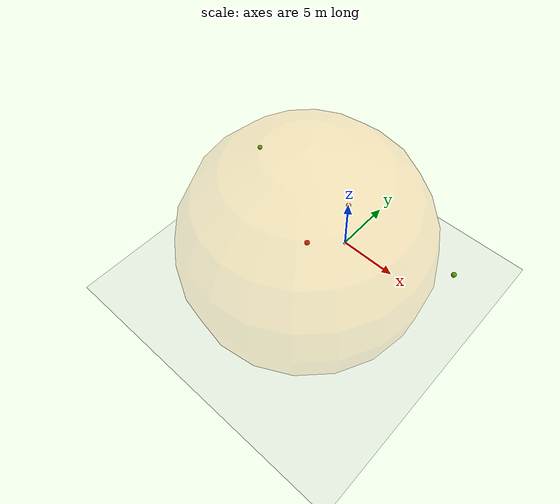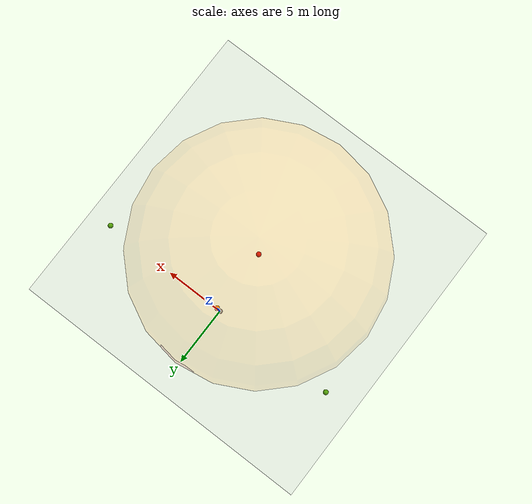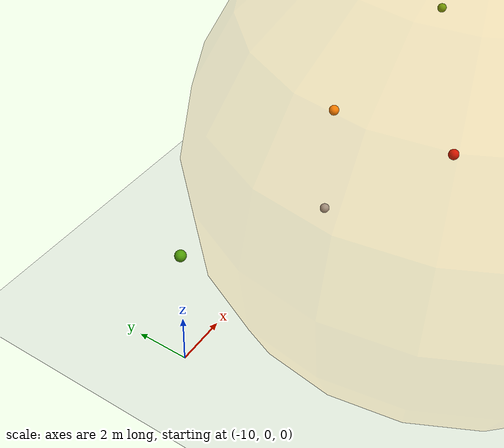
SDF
<sdf version="1.7">
 <world name="default">
  <physics type="ode">
   <ode>
    <solver>
     <type>quick</type>
     <iters>100</iters>
     <sor>1</sor>
     <use_dynamic_moi_rescaling>0</use_dynamic_moi_rescaling>
    </solver>
    <constraints>
     <cfm>0</cfm>
     <erp>0.9</erp>
     <contact_max_correcting_vel>0.1</contact_max_correcting_vel>
     <contact_surface_layer>0</contact_surface_layer>
    </constraints>
   </ode>
   <real_time_update_rate>-1</real_time_update_rate>
   <max_step_size>0.001</max_step_size>
   <real_time_factor>1</real_time_factor>
  </physics>
  <model name="ground_plane">
   <pose>0 520 0 0 0 -1.5708</pose>
   <static>1</static>
   <link name="link">
    <collision name="collision">
     <geometry><plane><normal>0 0 1</normal><size>5000 5000</size></plane></geometry>
     <surface><friction><ode><mu>1</mu><mu2>1</mu2></ode></friction></surface>
    </collision>
    <visual name="runway">
     <pose>0 0 0.005 0 -0 0</pose>
     <cast_shadows>0</cast_shadows>
     <geometry><plane><normal>0 0 1</normal><size>1829 45</size></plane></geometry>
     <material>
      <script><uri>file://media/materials/scripts/gazebo.material</uri><name>Gazebo/Runway</name></script>
     </material>
    </visual>
    <visual name="grass">
     <pose>0 0 -0.1 0 -0 0</pose>
     <cast_shadows>0</cast_shadows>
     <geometry><plane><normal>0 0 1</normal><size>5000 5000</size></plane></geometry>
     <material>
      <script><uri>file://media/materials/scripts/gazebo.material</uri><name>Gazebo/Grass</name></script>
     </material>
    </visual>
   </link>
  </model>
  <light name="sun" type="directional">
   <pose>0 0 10 0 -0 0</pose>
   <diffuse>0.8 0.8 0.8 1</diffuse>
   <specular>0.2 0.2 0.2 1</specular>
   <attenuation>
    <range>1000</range>
    <constant>0.9</constant>
    <linear>0.01</linear>
    <quadratic>0.001</quadratic>
   </attenuation>
   <direction>-0.5 0.1 -0.9</direction>
   <spot><inner_angle>0</inner_angle><outer_angle>0</outer_angle><falloff>0</falloff></spot>
  </light>
  <gravity>0 0 -9.8</gravity>
  <magnetic_field>6e-06 2.3e-05 -4.2e-05</magnetic_field>
  <atmosphere type="adiabatic"/>
  <scene><ambient>0.4 0.4 0.4 1</ambient><background>0.7 0.7 0.7 1</background><shadows>1</shadows></scene>
  <spherical_coordinates>
   <surface_model>EARTH_WGS84</surface_model>
   <latitude_deg>0</latitude_deg>
   <longitude_deg>0</longitude_deg>
   <elevation>0</elevation>
   <heading_deg>0</heading_deg>
  </spherical_coordinates>
  <model name="origin.origin">
   <link name="link">
    <inertial>
     <inertia><ixx>0.1</ixx><ixy>0</ixy><ixz>0</ixz><iyy>0.1</iyy><iyz>0</iyz><izz>0.1</izz></inertia>
     <mass>1</mass>
    </inertial>
    <gravity>0</gravity>
    <visual name="visual">
     <geometry><sphere><radius>0.2</radius></sphere></geometry>
     <material>
      <script><name>Gazebo/Grey</name><uri>file://media/materials/scripts/gazebo.material</uri></script>
      <shader type="pixel"><normal_map>__default__</normal_map></shader>
      <ambient>0.3 0.3 0.3 1</ambient>
      <diffuse>1.0 1.0 1.0 1</diffuse>
      <specular>0.01 0.01 0.01 1</specular>
      <emissive>0 0 0 1</emissive>
     </material>
     <transparency>0.05</transparency>
    </visual>
   </link>
   <static>0</static>
  </model>
  <model name="true_pos.true_pos">
   <pose>0.0 -5.0 5 0 0 0</pose>
   <link name="link">
    <inertial>
     <inertia><ixx>0.1</ixx><ixy>0</ixy><ixz>0</ixz><iyy>0.1</iyy><iyz>0</iyz><izz>0.1</izz></inertia>
     <mass>1</mass>
    </inertial>
    <gravity>0</gravity>
    <visual name="visual">
     <geometry><sphere><radius>0.2</radius></sphere></geometry>
     <material>
      <script><name>Gazebo/Grey</name><uri>file://media/materials/scripts/gazebo.material</uri></script>
      <shader type="pixel"><normal_map>__default__</normal_map></shader>
      <ambient>0.3 0.3 0.3 1</ambient>
      <diffuse>0.8 0.0 0.0 1</diffuse>
      <specular>0.01 0.01 0.01 1</specular>
      <emissive>0 0 0 1</emissive>
     </material>
     <transparency>0.05</transparency>
    </visual>
   </link>
   <static>0</static>
  </model>
  <model name="fake_pos.fake_pos">
   <pose>0 0 5 0 0 0</pose>
   <link name="link">
    <inertial>
     <inertia><ixx>0.1</ixx><ixy>0</ixy><ixz>0</ixz><iyy>0.1</iyy><iyz>0</iyz><izz>0.1</izz></inertia>
     <mass>1</mass>
    </inertial>
    <gravity>0</gravity>
    <visual name="visual">
     <geometry><sphere><radius>0.2</radius></sphere></geometry>
     <material>
      <script><name>Gazebo/Grey</name><uri>file://media/materials/scripts/gazebo.material</uri></script>
      <shader type="pixel"><normal_map>__default__</normal_map></shader>
      <ambient>0.3 0.3 0.3 1</ambient>
      <diffuse>1.0 0.5 0.0 1</diffuse>
      <specular>0.01 0.01 0.01 1</specular>
      <emissive>0 0 0 1</emissive>
     </material>
     <transparency>0.05</transparency>
    </visual>
   </link>
   <static>0</static>
  </model>
  <model name="avoid_zone.avoid_zone">
   <pose>0 0 5 0 0 0</pose>
   <link name="link">
    <inertial>
     <inertia><ixx>0.1</ixx><ixy>0</ixy><ixz>0</ixz><iyy>0.1</iyy><iyz>0</iyz><izz>0.1</izz></inertia>
     <mass>1</mass>
    </inertial>
    <gravity>0</gravity>
    <visual name="visual">
     <geometry><sphere><radius>5.0</radius></sphere></geometry>
     <material>
      <script><name>Gazebo/Grey</name><uri>file://media/materials/scripts/gazebo.material</uri></script>
      <shader type="pixel"><normal_map>__default__</normal_map></shader>
      <ambient>0.3 0.3 0.3 1</ambient>
      <diffuse>0.8 0.0 0.0 1</diffuse>
      <specular>0.01 0.01 0.01 1</specular>
      <emissive>0 0 0 1</emissive>
     </material>
     <transparency>0.85</transparency>
    </visual>
   </link>
   <static>0</static>
  </model>
  <model name="radar_zone.radar_zone">
   <pose>0.0 -5.0 5 0 0 0</pose>
   <link name="link">
    <inertial>
     <inertia><ixx>0.1</ixx><ixy>0</ixy><ixz>0</ixz><iyy>0.1</iyy><iyz>0</iyz><izz>0.1</izz></inertia>
     <mass>1</mass>
    </inertial>
    <gravity>0</gravity>
    <visual name="visual">
     <geometry><sphere><radius>10.0</radius></sphere></geometry>
     <material>
      <script><name>Gazebo/Grey</name><uri>file://media/materials/scripts/gazebo.material</uri></script>
      <shader type="pixel"><normal_map>__default__</normal_map></shader>
      <ambient>0.3 0.3 0.3 1</ambient>
      <diffuse>1.0 0.5 0.0 1</diffuse>
      <specular>0.01 0.01 0.01 1</specular>
      <emissive>0 0 0 1</emissive>
     </material>
     <transparency>0.9</transparency>
    </visual>
   </link>
   <static>0</static>
  </model>
  <model name="traj_1.0">
   <pose>-10.0 0.0 5 0 0 0</pose>
   <link name="link">
    <inertial>
     <inertia><ixx>0.1</ixx><ixy>0</ixy><ixz>0</ixz><iyy>0.1</iyy><iyz>0</iyz><izz>0.1</izz></inertia>
     <mass>1</mass>
    </inertial>
    <gravity>0</gravity>
    <visual name="visual">
     <geometry><sphere><radius>0.2</radius></sphere></geometry>
     <material>
      <script><name>Gazebo/Grey</name><uri>file://media/materials/scripts/gazebo.material</uri></script>
      <shader type="pixel"><normal_map>__default__</normal_map></shader>
      <ambient>0.3 0.3 0.3 1</ambient>
      <diffuse>0.306 0.604 0.024 1</diffuse>
      <specular>0.01 0.01 0.01 1</specular>
      <emissive>0 0 0 1</emissive>
     </material>
     <transparency>0.05</transparency>
    </visual>
   </link>
   <static>0</static>
  </model>
  <model name="traj_1.0">
   <pose>-10.0 0.0 5 0 0 0</pose>
   <link name="link">
    <inertial>
     <inertia><ixx>0.1</ixx><ixy>0</ixy><ixz>0</ixz><iyy>0.1</iyy><iyz>0</iyz><izz>0.1</izz></inertia>
     <mass>1</mass>
    </inertial>
    <gravity>0</gravity>
    <visual name="visual">
     <geometry><sphere><radius>0.2</radius></sphere></geometry>
     <material>
      <script><name>Gazebo/Grey</name><uri>file://media/materials/scripts/gazebo.material</uri></script>
      <shader type="pixel"><normal_map>__default__</normal_map></shader>
      <ambient>0.3 0.3 0.3 1</ambient>
      <diffuse>0.306 0.604 0.024 1</diffuse>
      <specular>0.01 0.01 0.01 1</specular>
      <emissive>0 0 0 1</emissive>
     </material>
     <transparency>0.05</transparency>
    </visual>
   </link>
   <static>0</static>
  </model>
  <model name="traj_1.1">
   <pose>10.0 0.0 5 0 0 0</pose>
   <link name="link">
    <inertial>
     <inertia><ixx>0.1</ixx><ixy>0</ixy><ixz>0</ixz><iyy>0.1</iyy><iyz>0</iyz><izz>0.1</izz></inertia>
     <mass>1</mass>
    </inertial>
    <gravity>0</gravity>
    <visual name="visual">
     <geometry><sphere><radius>0.2</radius></sphere></geometry>
     <material>
      <script><name>Gazebo/Grey</name><uri>file://media/materials/scripts/gazebo.material</uri></script>
      <shader type="pixel"><normal_map>__default__</normal_map></shader>
      <ambient>0.3 0.3 0.3 1</ambient>
      <diffuse>0.306 0.604 0.024 1</diffuse>
      <specular>0.01 0.01 0.01 1</specular>
      <emissive>0 0 0 1</emissive>
     </material>
     <transparency>0.05</transparency>
    </visual>
   </link>
   <static>0</static>
  </model>
  <model name="traj_255.0">
   <pose>0.0 -5.0 5 0 0 0</pose>
   <link name="link">
    <inertial>
     <inertia><ixx>0.1</ixx><ixy>0</ixy><ixz>0</ixz><iyy>0.1</iyy><iyz>0</iyz><izz>0.1</izz></inertia>
     <mass>1</mass>
    </inertial>
    <gravity>0</gravity>
    <visual name="visual">
     <geometry><sphere><radius>0.2</radius></sphere></geometry>
     <material>
      <script><name>Gazebo/Grey</name><uri>file://media/materials/scripts/gazebo.material</uri></script>
      <shader type="pixel"><normal_map>__default__</normal_map></shader>
      <ambient>0.3 0.3 0.3 1</ambient>
      <diffuse>0.8 0.0 0.0 1</diffuse>
      <specular>0.01 0.01 0.01 1</specular>
      <emissive>0 0 0 1</emissive>
     </material>
     <transparency>0.05</transparency>
    </visual>
   </link>
   <static>0</static>
  </model>
 </world>
</sdf>
